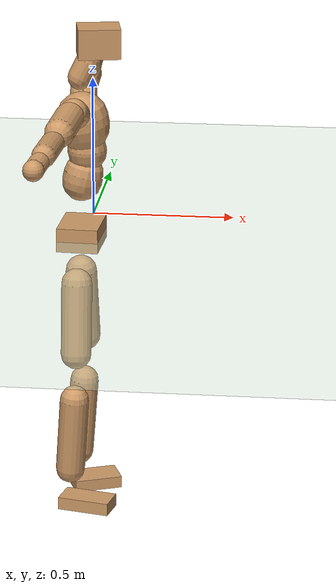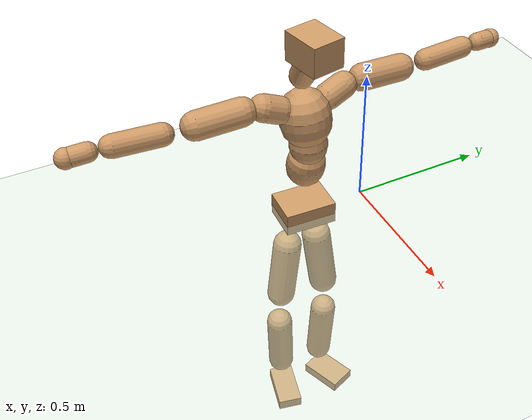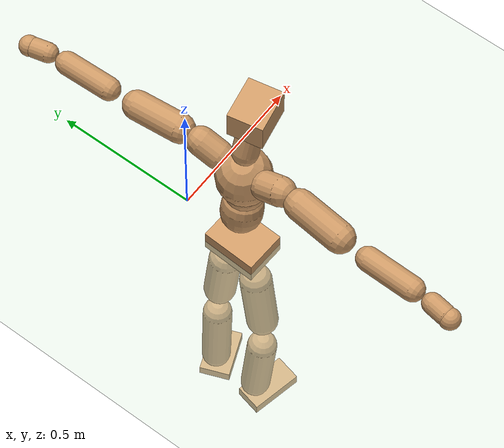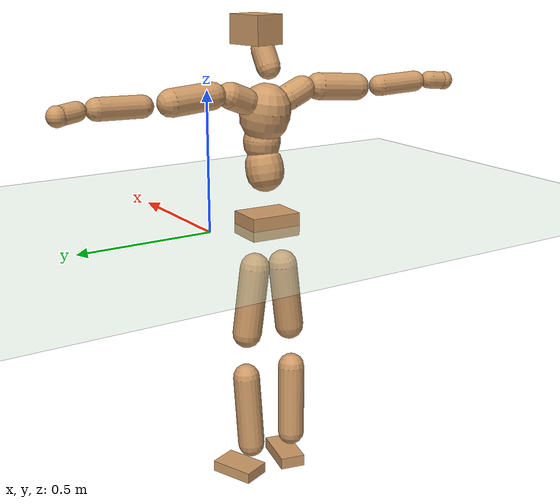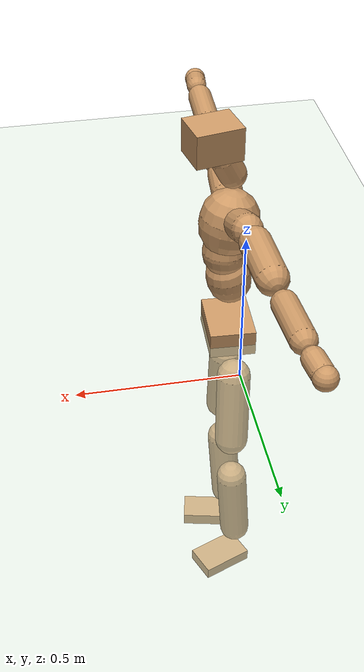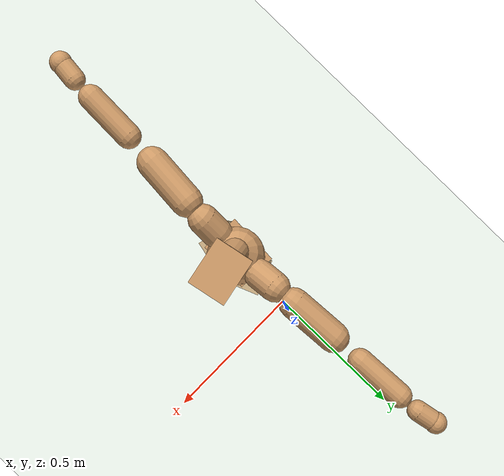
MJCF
<mujoco model="humanoid">
  <compiler coordinate="local" angle="radian"/>
  <default>
    <joint damping="0.0" armature="0.01" stiffness="0.0" limited="true"/>
    <geom conaffinity="1" condim="3" contype="7" margin="0.001" rgba="0.8 0.6 .4 1"/>
  </default>
  <asset>
    <texture type="skybox" builtin="gradient" rgb1=".4 .5 .6" rgb2="0 0 0" width="100" height="100"/>
    <texture builtin="flat" height="1278" mark="cross" markrgb="1 1 1" name="texgeom" random="0.01" rgb1="0.8 0.6 0.4" rgb2="0.8 0.6 0.4" type="cube" width="127"/>
    <texture builtin="checker" height="100" name="texplane" rgb1="0 0 0" rgb2="0.8 0.8 0.8" type="2d" width="100"/>
    <material name="MatPlane" reflectance="0.5" shininess="1" specular="1" texrepeat="60 60" texture="texplane"/>
    <material name="geom" texture="texgeom" texuniform="true"/>
  </asset>
  <worldbody>
    <light cutoff="100" diffuse="1 1 1" dir="-0 0 -1.3" directional="true" exponent="1" pos="0 0 1.3" specular=".1 .1 .1"/>
    <geom conaffinity="1" condim="3" name="floor" pos="0 0 0" rgba="0.8 0.9 0.8 1" size="100 100 .2" type="plane" material="MatPlane"/>
    <body name="Pelvis" pos="-0.0022 -0.2328 0.0114">
      <freejoint name="Pelvis"/>
      <geom type="box" contype="1" conaffinity="1" density="500" pos="-0.0114 0.0005 -0.0084" size="0.0722 0.0952 0.0423" quat="0.9997 0.0000 0.0000 -0.0228" name="Pelvis"/>
      <body name="L_Hip" pos="-0.0246 0.0502 -0.0826">
        <joint name="L_Hip_x" type="hinge" pos="0 0 0" axis="1 0 0" stiffness="800" damping="80" armature="0.02" range="-180.0000 180.0000"/>
        <joint name="L_Hip_y" type="hinge" pos="0 0 0" axis="0 1 0" stiffness="800" damping="80" armature="0.02" range="-180.0000 180.0000"/>
        <joint name="L_Hip_z" type="hinge" pos="0 0 0" axis="0 0 1" stiffness="800" damping="80" armature="0.02" range="-180.0000 180.0000"/>
        <geom type="capsule" contype="1" conaffinity="1" density="500" fromto="0.0024 0.0102 -0.0850 0.0097 0.0406 -0.3398" size="0.0548" name="L_Hip"/>
        <body name="L_Knee" pos="0.0121 0.0508 -0.4248">
          <joint name="L_Knee_x" type="hinge" pos="0 0 0" axis="1 0 0" stiffness="800" damping="80" armature="0.02" range="-180.0000 180.0000"/>
          <joint name="L_Knee_y" type="hinge" pos="0 0 0" axis="0 1 0" stiffness="800" damping="80" armature="0.02" range="-180.0000 180.0000"/>
          <joint name="L_Knee_z" type="hinge" pos="0 0 0" axis="0 0 1" stiffness="800" damping="80" armature="0.02" range="-180.0000 180.0000"/>
          <geom type="capsule" contype="1" conaffinity="1" density="500" fromto="-0.0068 -0.0026 -0.0910 -0.0273 -0.0102 -0.3641" size="0.0504" name="L_Knee"/>
          <body name="L_Ankle" pos="-0.0341 -0.0128 -0.4552">
            <joint name="L_Ankle_x" type="hinge" pos="0 0 0" axis="1 0 0" stiffness="800" damping="80" armature="0.02" range="-180.0000 180.0000"/>
            <joint name="L_Ankle_y" type="hinge" pos="0 0 0" axis="0 1 0" stiffness="800" damping="80" armature="0.02" range="-180.0000 180.0000"/>
            <joint name="L_Ankle_z" type="hinge" pos="0 0 0" axis="0 0 1" stiffness="800" damping="80" armature="0.02" range="-180.0000 180.0000"/>
            <geom type="box" contype="1" conaffinity="1" density="500" pos="0.0620 0.0244 -0.0318" size="0.0855 0.0542 0.021" quat="0.9825 0.0000 0.0000 0.1862" name="L_Ankle"/>
            <body name="L_Toe" pos="0.124 0.0488 -0.0637">
              <joint name="L_Toe_x" type="hinge" pos="0 0 0" axis="1 0 0" stiffness="500" damping="50" armature="0.02" range="-180.0000 180.0000"/>
              <joint name="L_Toe_y" type="hinge" pos="0 0 0" axis="0 1 0" stiffness="500" damping="50" armature="0.02" range="-180.0000 180.0000"/>
              <joint name="L_Toe_z" type="hinge" pos="0 0 0" axis="0 0 1" stiffness="500" damping="50" armature="0.02" range="-180.0000 180.0000"/>
              <geom type="box" contype="1" conaffinity="1" density="500" pos="0.0000 0.0000 0.0342" size="0.001 0.0026 0.0012" quat="0.9817 0.0000 0.0000 0.1903" name="L_Toe"/>
            </body>
          </body>
        </body>
      </body>
      <body name="R_Hip" pos="-0.0217 -0.0514 -0.0915">
        <joint name="R_Hip_x" type="hinge" pos="0 0 0" axis="1 0 0" stiffness="800" damping="80" armature="0.02" range="-180.0000 180.0000"/>
        <joint name="R_Hip_y" type="hinge" pos="0 0 0" axis="0 1 0" stiffness="800" damping="80" armature="0.02" range="-180.0000 180.0000"/>
        <joint name="R_Hip_z" type="hinge" pos="0 0 0" axis="0 0 1" stiffness="800" damping="80" armature="0.02" range="-180.0000 180.0000"/>
        <geom type="capsule" contype="1" conaffinity="1" density="500" fromto="-0.0002 -0.0103 -0.0833 -0.0008 -0.0411 -0.3330" size="0.054" name="R_Hip"/>
        <body name="R_Knee" pos="-0.0011 -0.0514 -0.4163">
          <joint name="R_Knee_x" type="hinge" pos="0 0 0" axis="1 0 0" stiffness="800" damping="80" armature="0.02" range="-180.0000 180.0000"/>
          <joint name="R_Knee_y" type="hinge" pos="0 0 0" axis="0 1 0" stiffness="800" damping="80" armature="0.02" range="-180.0000 180.0000"/>
          <joint name="R_Knee_z" type="hinge" pos="0 0 0" axis="0 0 1" stiffness="800" damping="80" armature="0.02" range="-180.0000 180.0000"/>
          <geom type="capsule" contype="1" conaffinity="1" density="500" fromto="-0.0063 0.0039 -0.0897 -0.0252 0.0156 -0.3587" size="0.0511" name="R_Knee"/>
          <body name="R_Ankle" pos="-0.0314 0.0196 -0.4483">
            <joint name="R_Ankle_x" type="hinge" pos="0 0 0" axis="1 0 0" stiffness="800" damping="80" armature="0.02" range="-180.0000 180.0000"/>
            <joint name="R_Ankle_y" type="hinge" pos="0 0 0" axis="0 1 0" stiffness="800" damping="80" armature="0.02" range="-180.0000 180.0000"/>
            <joint name="R_Ankle_z" type="hinge" pos="0 0 0" axis="0 0 1" stiffness="800" damping="80" armature="0.02" range="-180.0000 180.0000"/>
            <geom type="box" contype="1" conaffinity="1" density="500" pos="0.0670 -0.0150 -0.0333" size="0.0929 0.0478 0.0226" quat="0.9940 0.0000 0.0000 -0.1097" name="R_Ankle"/>
            <body name="R_Toe" pos="0.134 -0.0299 -0.0666">
              <joint name="R_Toe_x" type="hinge" pos="0 0 0" axis="1 0 0" stiffness="500" damping="50" armature="0.02" range="-180.0000 180.0000"/>
              <joint name="R_Toe_y" type="hinge" pos="0 0 0" axis="0 1 0" stiffness="500" damping="50" armature="0.02" range="-180.0000 180.0000"/>
              <joint name="R_Toe_z" type="hinge" pos="0 0 0" axis="0 0 1" stiffness="500" damping="50" armature="0.02" range="-180.0000 180.0000"/>
              <geom type="box" contype="1" conaffinity="1" density="500" pos="0.0000 0.0000 0.0353" size="0.0009 0.0023 0.0012" quat="0.9949 0.0000 0.0000 -0.1011" name="R_Toe"/>
            </body>
          </body>
        </body>
      </body>
      <body name="Torso" pos="-0.0222 0.0044 0.1236">
        <joint name="Torso_x" type="hinge" pos="0 0 0" axis="1 0 0" stiffness="1000" damping="100" armature="0.02" range="-180.0000 180.0000"/>
        <joint name="Torso_y" type="hinge" pos="0 0 0" axis="0 1 0" stiffness="1000" damping="100" armature="0.02" range="-180.0000 180.0000"/>
        <joint name="Torso_z" type="hinge" pos="0 0 0" axis="0 0 1" stiffness="1000" damping="100" armature="0.02" range="-180.0000 180.0000"/>
        <geom type="capsule" contype="1" conaffinity="1" density="500" fromto="0.0193 0.0029 0.0841 0.0129 0.0019 0.0561" size="0.069" name="Torso"/>
        <body name="Spine" pos="0.0321 0.0048 0.1402">
          <joint name="Spine_x" type="hinge" pos="0 0 0" axis="1 0 0" stiffness="1000" damping="100" armature="0.02" range="-180.0000 180.0000"/>
          <joint name="Spine_y" type="hinge" pos="0 0 0" axis="0 1 0" stiffness="1000" damping="100" armature="0.02" range="-180.0000 180.0000"/>
          <joint name="Spine_z" type="hinge" pos="0 0 0" axis="0 0 1" stiffness="1000" damping="100" armature="0.02" range="-180.0000 180.0000"/>
          <geom type="capsule" contype="1" conaffinity="1" density="500" fromto="-0.0002 -0.0014 0.0342 -0.0001 -0.0009 0.0228" size="0.068" name="Spine"/>
          <body name="Chest" pos="-0.0003 -0.0024 0.0571">
            <joint name="Chest_x" type="hinge" pos="0 0 0" axis="1 0 0" stiffness="1000" damping="100" armature="0.02" range="-180.0000 180.0000"/>
            <joint name="Chest_y" type="hinge" pos="0 0 0" axis="0 1 0" stiffness="1000" damping="100" armature="0.02" range="-180.0000 180.0000"/>
            <joint name="Chest_z" type="hinge" pos="0 0 0" axis="0 0 1" stiffness="1000" damping="100" armature="0.02" range="-180.0000 180.0000"/>
            <geom type="capsule" contype="1" conaffinity="1" density="500" fromto="-0.0152 -0.0053 0.0880 -0.0101 -0.0035 0.0587" size="0.0906" name="Chest"/>
            <body name="Neck" pos="-0.0301 -0.0149 0.2136">
              <joint name="Neck_x" type="hinge" pos="0 0 0" axis="1 0 0" stiffness="500" damping="50" armature="0.02" range="-180.0000 180.0000"/>
              <joint name="Neck_y" type="hinge" pos="0 0 0" axis="0 1 0" stiffness="500" damping="50" armature="0.02" range="-180.0000 180.0000"/>
              <joint name="Neck_z" type="hinge" pos="0 0 0" axis="0 0 1" stiffness="500" damping="50" armature="0.02" range="-180.0000 180.0000"/>
              <geom type="capsule" contype="1" conaffinity="1" density="500" fromto="0.0096 0.0015 0.0193 0.0383 0.0061 0.0771" size="0.0426" name="Neck"/>
              <body name="Head" pos="0.0479 0.0076 0.0963">
                <joint name="Head_x" type="hinge" pos="0 0 0" axis="1 0 0" stiffness="500" damping="50" armature="0.02" range="-180.0000 180.0000"/>
                <joint name="Head_y" type="hinge" pos="0 0 0" axis="0 1 0" stiffness="500" damping="50" armature="0.02" range="-180.0000 180.0000"/>
                <joint name="Head_z" type="hinge" pos="0 0 0" axis="0 0 1" stiffness="500" damping="50" armature="0.02" range="-180.0000 180.0000"/>
                <geom type="box" contype="1" conaffinity="1" density="500" pos="0.0249 0.0048 0.0492" size="0.0728 0.0588 0.0519" quat="0.9955 0.0000 0.0000 0.0952" name="Head"/>
              </body>
            </body>
            <body name="L_Thorax" pos="-0.0217 0.0617 0.1133">
              <joint name="L_Thorax_x" type="hinge" pos="0 0 0" axis="1 0 0" stiffness="500" damping="50" armature="0.02" range="-180.0000 180.0000"/>
              <joint name="L_Thorax_y" type="hinge" pos="0 0 0" axis="0 1 0" stiffness="500" damping="50" armature="0.02" range="-180.0000 180.0000"/>
              <joint name="L_Thorax_z" type="hinge" pos="0 0 0" axis="0 0 1" stiffness="500" damping="50" armature="0.02" range="-180.0000 180.0000"/>
              <geom type="capsule" contype="1" conaffinity="1" density="500" fromto="-0.0020 0.0214 0.0085 -0.0079 0.0854 0.0340" size="0.0471" name="L_Thorax"/>
              <body name="L_Shoulder" pos="-0.0099 0.1068 0.0426">
                <joint name="L_Shoulder_x" type="hinge" pos="0 0 0" axis="1 0 0" stiffness="500" damping="50" armature="0.02" range="-720.0000 720.0000"/>
                <joint name="L_Shoulder_y" type="hinge" pos="0 0 0" axis="0 1 0" stiffness="500" damping="50" armature="0.02" range="-720.0000 720.0000"/>
                <joint name="L_Shoulder_z" type="hinge" pos="0 0 0" axis="0 0 1" stiffness="500" damping="50" armature="0.02" range="-720.0000 720.0000"/>
                <geom type="capsule" contype="1" conaffinity="1" density="500" fromto="-0.0031 0.0531 -0.0033 -0.0125 0.2126 -0.0133" size="0.0479" name="L_Shoulder"/>
                <body name="L_Elbow" pos="-0.0156 0.2657 -0.0167">
                  <joint name="L_Elbow_x" type="hinge" pos="0 0 0" axis="1 0 0" stiffness="500" damping="50" armature="0.02" range="-720.0000 720.0000"/>
                  <joint name="L_Elbow_y" type="hinge" pos="0 0 0" axis="0 1 0" stiffness="500" damping="50" armature="0.02" range="-720.0000 720.0000"/>
                  <joint name="L_Elbow_z" type="hinge" pos="0 0 0" axis="0 0 1" stiffness="500" damping="50" armature="0.02" range="-720.0000 720.0000"/>
                  <geom type="capsule" contype="1" conaffinity="1" density="500" fromto="-0.0023 0.0530 0.0016 -0.0094 0.2121 0.0066" size="0.0381" name="L_Elbow"/>
                  <body name="L_Wrist" pos="-0.0117 0.2651 0.0082">
                    <joint name="L_Wrist_x" type="hinge" pos="0 0 0" axis="1 0 0" stiffness="300" damping="30" armature="0.02" range="-180.0000 180.0000"/>
                    <joint name="L_Wrist_y" type="hinge" pos="0 0 0" axis="0 1 0" stiffness="300" damping="30" armature="0.02" range="-180.0000 180.0000"/>
                    <joint name="L_Wrist_z" type="hinge" pos="0 0 0" axis="0 0 1" stiffness="300" damping="30" armature="0.02" range="-180.0000 180.0000"/>
                    <geom type="capsule" contype="1" conaffinity="1" density="500" fromto="-0.0031 0.0168 -0.0020 -0.0123 0.0673 -0.0078" size="0.0326" name="L_Wrist"/>
                    <body name="L_Hand" pos="-0.0154 0.0841 -0.0098">
                      <joint name="L_Hand_x" type="hinge" pos="0 0 0" axis="1 0 0" stiffness="300" damping="30" armature="0.02" range="-180.0000 180.0000"/>
                      <joint name="L_Hand_y" type="hinge" pos="0 0 0" axis="0 1 0" stiffness="300" damping="30" armature="0.02" range="-180.0000 180.0000"/>
                      <joint name="L_Hand_z" type="hinge" pos="0 0 0" axis="0 0 1" stiffness="300" damping="30" armature="0.02" range="-180.0000 180.0000"/>
                      <geom type="sphere" contype="1" conaffinity="1" density="500" size="0.0343" pos="0.0000 0.0000 0.0000" name="L_Hand"/>
                    </body>
                  </body>
                </body>
              </body>
            </body>
            <body name="R_Thorax" pos="-0.024 -0.0731 0.1131">
              <joint name="R_Thorax_x" type="hinge" pos="0 0 0" axis="1 0 0" stiffness="500" damping="50" armature="0.02" range="-180.0000 180.0000"/>
              <joint name="R_Thorax_y" type="hinge" pos="0 0 0" axis="0 1 0" stiffness="500" damping="50" armature="0.02" range="-180.0000 180.0000"/>
              <joint name="R_Thorax_z" type="hinge" pos="0 0 0" axis="0 0 1" stiffness="500" damping="50" armature="0.02" range="-180.0000 180.0000"/>
              <geom type="capsule" contype="1" conaffinity="1" density="500" fromto="-0.0002 -0.0196 0.0088 -0.0008 -0.0786 0.0350" size="0.0479" name="R_Thorax"/>
              <body name="R_Shoulder" pos="-0.001 -0.0982 0.0438">
                <joint name="R_Shoulder_x" type="hinge" pos="0 0 0" axis="1 0 0" stiffness="500" damping="50" armature="0.02" range="-720.0000 720.0000"/>
                <joint name="R_Shoulder_y" type="hinge" pos="0 0 0" axis="0 1 0" stiffness="500" damping="50" armature="0.02" range="-720.0000 720.0000"/>
                <joint name="R_Shoulder_z" type="hinge" pos="0 0 0" axis="0 0 1" stiffness="500" damping="50" armature="0.02" range="-720.0000 720.0000"/>
                <geom type="capsule" contype="1" conaffinity="1" density="500" fromto="-0.0042 -0.0525 -0.0040 -0.0168 -0.2101 -0.0159" size="0.0496" name="R_Shoulder"/>
                <body name="R_Elbow" pos="-0.021 -0.2627 -0.0198">
                  <joint name="R_Elbow_x" type="hinge" pos="0 0 0" axis="1 0 0" stiffness="500" damping="50" armature="0.02" range="-720.0000 720.0000"/>
                  <joint name="R_Elbow_y" type="hinge" pos="0 0 0" axis="0 1 0" stiffness="500" damping="50" armature="0.02" range="-720.0000 720.0000"/>
                  <joint name="R_Elbow_z" type="hinge" pos="0 0 0" axis="0 0 1" stiffness="500" damping="50" armature="0.02" range="-720.0000 720.0000"/>
                  <geom type="capsule" contype="1" conaffinity="1" density="500" fromto="-0.0018 -0.0547 0.0019 -0.0072 -0.2187 0.0077" size="0.0389" name="R_Elbow"/>
                  <body name="R_Wrist" pos="-0.009 -0.2734 0.0096">
                    <joint name="R_Wrist_x" type="hinge" pos="0 0 0" axis="1 0 0" stiffness="300" damping="30" armature="0.02" range="-180.0000 180.0000"/>
                    <joint name="R_Wrist_y" type="hinge" pos="0 0 0" axis="0 1 0" stiffness="300" damping="30" armature="0.02" range="-180.0000 180.0000"/>
                    <joint name="R_Wrist_z" type="hinge" pos="0 0 0" axis="0 0 1" stiffness="300" damping="30" armature="0.02" range="-180.0000 180.0000"/>
                    <geom type="capsule" contype="1" conaffinity="1" density="500" fromto="-0.0019 -0.0171 -0.0015 -0.0078 -0.0685 -0.0062" size="0.033" name="R_Wrist"/>
                    <body name="R_Hand" pos="-0.0097 -0.0856 -0.0077">
                      <joint name="R_Hand_x" type="hinge" pos="0 0 0" axis="1 0 0" stiffness="300" damping="30" armature="0.02" range="-180.0000 180.0000"/>
                      <joint name="R_Hand_y" type="hinge" pos="0 0 0" axis="0 1 0" stiffness="300" damping="30" armature="0.02" range="-180.0000 180.0000"/>
                      <joint name="R_Hand_z" type="hinge" pos="0 0 0" axis="0 0 1" stiffness="300" damping="30" armature="0.02" range="-180.0000 180.0000"/>
                      <geom type="sphere" contype="1" conaffinity="1" density="500" size="0.0347" pos="0.0000 0.0000 0.0000" name="R_Hand"/>
                    </body>
                  </body>
                </body>
              </body>
            </body>
          </body>
        </body>
      </body>
    </body>
  </worldbody>
  <actuator>
    <motor name="L_Hip_x" joint="L_Hip_x" gear="500"/>
    <motor name="L_Hip_y" joint="L_Hip_y" gear="500"/>
    <motor name="L_Hip_z" joint="L_Hip_z" gear="500"/>
    <motor name="L_Knee_x" joint="L_Knee_x" gear="500"/>
    <motor name="L_Knee_y" joint="L_Knee_y" gear="500"/>
    <motor name="L_Knee_z" joint="L_Knee_z" gear="500"/>
    <motor name="L_Ankle_x" joint="L_Ankle_x" gear="500"/>
    <motor name="L_Ankle_y" joint="L_Ankle_y" gear="500"/>
    <motor name="L_Ankle_z" joint="L_Ankle_z" gear="500"/>
    <motor name="L_Toe_x" joint="L_Toe_x" gear="500"/>
    <motor name="L_Toe_y" joint="L_Toe_y" gear="500"/>
    <motor name="L_Toe_z" joint="L_Toe_z" gear="500"/>
    <motor name="R_Hip_x" joint="R_Hip_x" gear="500"/>
    <motor name="R_Hip_y" joint="R_Hip_y" gear="500"/>
    <motor name="R_Hip_z" joint="R_Hip_z" gear="500"/>
    <motor name="R_Knee_x" joint="R_Knee_x" gear="500"/>
    <motor name="R_Knee_y" joint="R_Knee_y" gear="500"/>
    <motor name="R_Knee_z" joint="R_Knee_z" gear="500"/>
    <motor name="R_Ankle_x" joint="R_Ankle_x" gear="500"/>
    <motor name="R_Ankle_y" joint="R_Ankle_y" gear="500"/>
    <motor name="R_Ankle_z" joint="R_Ankle_z" gear="500"/>
    <motor name="R_Toe_x" joint="R_Toe_x" gear="500"/>
    <motor name="R_Toe_y" joint="R_Toe_y" gear="500"/>
    <motor name="R_Toe_z" joint="R_Toe_z" gear="500"/>
    <motor name="Torso_x" joint="Torso_x" gear="500"/>
    <motor name="Torso_y" joint="Torso_y" gear="500"/>
    <motor name="Torso_z" joint="Torso_z" gear="500"/>
    <motor name="Spine_x" joint="Spine_x" gear="500"/>
    <motor name="Spine_y" joint="Spine_y" gear="500"/>
    <motor name="Spine_z" joint="Spine_z" gear="500"/>
    <motor name="Chest_x" joint="Chest_x" gear="500"/>
    <motor name="Chest_y" joint="Chest_y" gear="500"/>
    <motor name="Chest_z" joint="Chest_z" gear="500"/>
    <motor name="Neck_x" joint="Neck_x" gear="500"/>
    <motor name="Neck_y" joint="Neck_y" gear="500"/>
    <motor name="Neck_z" joint="Neck_z" gear="500"/>
    <motor name="Head_x" joint="Head_x" gear="500"/>
    <motor name="Head_y" joint="Head_y" gear="500"/>
    <motor name="Head_z" joint="Head_z" gear="500"/>
    <motor name="L_Thorax_x" joint="L_Thorax_x" gear="500"/>
    <motor name="L_Thorax_y" joint="L_Thorax_y" gear="500"/>
    <motor name="L_Thorax_z" joint="L_Thorax_z" gear="500"/>
    <motor name="L_Shoulder_x" joint="L_Shoulder_x" gear="500"/>
    <motor name="L_Shoulder_y" joint="L_Shoulder_y" gear="500"/>
    <motor name="L_Shoulder_z" joint="L_Shoulder_z" gear="500"/>
    <motor name="L_Elbow_x" joint="L_Elbow_x" gear="500"/>
    <motor name="L_Elbow_y" joint="L_Elbow_y" gear="500"/>
    <motor name="L_Elbow_z" joint="L_Elbow_z" gear="500"/>
    <motor name="L_Wrist_x" joint="L_Wrist_x" gear="500"/>
    <motor name="L_Wrist_y" joint="L_Wrist_y" gear="500"/>
    <motor name="L_Wrist_z" joint="L_Wrist_z" gear="500"/>
    <motor name="L_Hand_x" joint="L_Hand_x" gear="500"/>
    <motor name="L_Hand_y" joint="L_Hand_y" gear="500"/>
    <motor name="L_Hand_z" joint="L_Hand_z" gear="500"/>
    <motor name="R_Thorax_x" joint="R_Thorax_x" gear="500"/>
    <motor name="R_Thorax_y" joint="R_Thorax_y" gear="500"/>
    <motor name="R_Thorax_z" joint="R_Thorax_z" gear="500"/>
    <motor name="R_Shoulder_x" joint="R_Shoulder_x" gear="500"/>
    <motor name="R_Shoulder_y" joint="R_Shoulder_y" gear="500"/>
    <motor name="R_Shoulder_z" joint="R_Shoulder_z" gear="500"/>
    <motor name="R_Elbow_x" joint="R_Elbow_x" gear="500"/>
    <motor name="R_Elbow_y" joint="R_Elbow_y" gear="500"/>
    <motor name="R_Elbow_z" joint="R_Elbow_z" gear="500"/>
    <motor name="R_Wrist_x" joint="R_Wrist_x" gear="500"/>
    <motor name="R_Wrist_y" joint="R_Wrist_y" gear="500"/>
    <motor name="R_Wrist_z" joint="R_Wrist_z" gear="500"/>
    <motor name="R_Hand_x" joint="R_Hand_x" gear="500"/>
    <motor name="R_Hand_y" joint="R_Hand_y" gear="500"/>
    <motor name="R_Hand_z" joint="R_Hand_z" gear="500"/>
  </actuator>
  <contact>
    <exclude body1="Torso" body2="Chest"/>
    <exclude body1="Head" body2="Chest"/>
    <exclude body1="R_Knee" body2="R_Toe"/>
    <exclude body1="R_Knee" body2="L_Ankle"/>
    <exclude body1="R_Knee" body2="L_Toe"/>
    <exclude body1="L_Knee" body2="L_Toe"/>
    <exclude body1="L_Knee" body2="R_Ankle"/>
    <exclude body1="L_Knee" body2="R_Toe"/>
    <exclude body1="L_Shoulder" body2="Chest"/>
    <exclude body1="R_Shoulder" body2="Chest"/>
  </contact>
  <sensor/>
  <size njmax="700" nconmax="700"/>
</mujoco>
